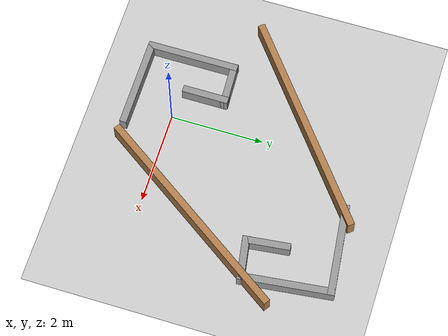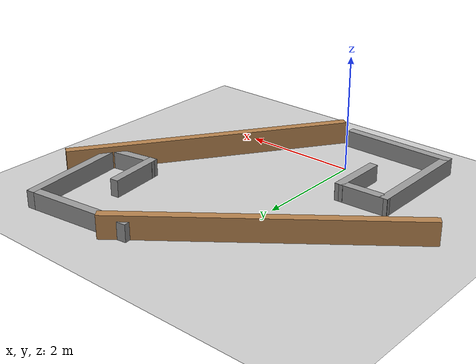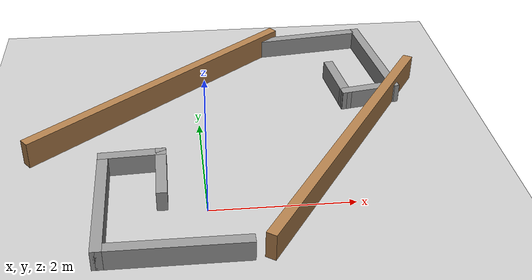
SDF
<sdf version="1.6">
 <world name="default">
  <light name="sun" type="directional">
   <pose>0 0 10 0 -0 0</pose>
   <diffuse>0.8 0.8 0.8 1</diffuse>
   <specular>0.2 0.2 0.2 1</specular>
   <attenuation>
    <range>1000</range>
    <constant>0.9</constant>
    <linear>0.01</linear>
    <quadratic>0.001</quadratic>
   </attenuation>
   <direction>-0.5 0.1 -0.9</direction>
  </light>
  <model name="ground_plane">
   <static>1</static>
   <link name="link">
    <collision name="collision">
     <geometry><plane><normal>0 0 1</normal><size>100 100</size></plane></geometry>
     <surface>
      <contact><collide_bitmask>65535</collide_bitmask></contact>
      <friction><ode><mu>100</mu><mu2>50</mu2></ode></friction>
     </surface>
    </collision>
    <visual name="visual">
     <cast_shadows>0</cast_shadows>
     <geometry><plane><normal>0 0 1</normal><size>100 100</size></plane></geometry>
     <material>
      <script><uri>file://media/materials/scripts/gazebo.material</uri><name>Gazebo/Grey</name></script>
     </material>
    </visual>
   </link>
  </model>
  <gravity>0 0 -9.8</gravity>
  <magnetic_field>6e-06 2.3e-05 -4.2e-05</magnetic_field>
  <atmosphere type="adiabatic"/>
  <physics name="default_physics" default="0" type="ode">
   <max_step_size>0.001</max_step_size>
   <real_time_factor>1</real_time_factor>
   <real_time_update_rate>1000</real_time_update_rate>
  </physics>
  <scene><ambient>0.4 0.4 0.4 1</ambient><background>0.7 0.7 0.7 1</background><shadows>1</shadows></scene>
  <audio><device>default</device></audio>
  <spherical_coordinates>
   <surface_model>EARTH_WGS84</surface_model>
   <latitude_deg>0</latitude_deg>
   <longitude_deg>0</longitude_deg>
   <elevation>0</elevation>
   <heading_deg>0</heading_deg>
  </spherical_coordinates>
  <model name="Esquina">
   <pose>-0.467561 0.042822 0 0 -0 0</pose>
   <link name="Wall_0">
    <collision name="Wall_0_Collision">
     <geometry><box><size>2 0.15 0.3</size></box></geometry>
     <pose>0 0 0.15 0 -0 0</pose>
    </collision>
    <visual name="Wall_0_Visual">
     <pose>0 0 0.15 0 -0 0</pose>
     <geometry><box><size>2 0.15 0.3</size></box></geometry>
     <material>
      <script><uri>file://media/materials/scripts/gazebo.material</uri><name>Gazebo/Grey</name></script>
      <ambient>1 1 1 1</ambient>
     </material>
     <meta><layer>0</layer></meta>
    </visual>
    <pose>-0.923174 -0.021826 0 0 -0 -1.5708</pose>
   </link>
   <link name="Wall_1">
    <collision name="Wall_1_Collision">
     <geometry><box><size>2 0.15 0.3</size></box></geometry>
     <pose>0 0 0.15 0 -0 0</pose>
    </collision>
    <visual name="Wall_1_Visual">
     <pose>0 0 0.15 0 -0 0</pose>
     <geometry><box><size>2 0.15 0.3</size></box></geometry>
     <material>
      <script><uri>file://media/materials/scripts/gazebo.material</uri><name>Gazebo/Grey</name></script>
      <ambient>1 1 1 1</ambient>
     </material>
     <meta><layer>0</layer></meta>
    </visual>
    <pose>0.001826 -0.946826 0 0 -0 0</pose>
   </link>
   <link name="Wall_3">
    <collision name="Wall_3_Collision">
     <geometry><box><size>1 0.15 0.3</size></box></geometry>
     <pose>0 0 0.15 0 -0 0</pose>
    </collision>
    <visual name="Wall_3_Visual">
     <pose>0 0 0.15 0 -0 0</pose>
     <geometry><box><size>1 0.15 0.3</size></box></geometry>
     <material>
      <script><uri>file://media/materials/scripts/gazebo.material</uri><name>Gazebo/Grey</name></script>
      <ambient>1 1 1 1</ambient>
     </material>
     <meta><layer>0</layer></meta>
    </visual>
    <pose>-0.123174 0.518174 0 0 -0 -1.5708</pose>
   </link>
   <link name="Wall_6">
    <collision name="Wall_6_Collision">
     <geometry><box><size>0.950999 0.15 0.3</size></box></geometry>
     <pose>0 0 0.15 0 -0 0</pose>
    </collision>
    <visual name="Wall_6_Visual">
     <pose>0 0 0.15 0 -0 0</pose>
     <geometry><box><size>0.950999 0.15 0.3</size></box></geometry>
     <material>
      <script><uri>file://media/materials/scripts/gazebo.material</uri><name>Gazebo/Grey</name></script>
      <ambient>1 1 1 1</ambient>
     </material>
     <meta><layer>0</layer></meta>
    </visual>
    <pose>-0.523174 0.923174 0 0 -0 -3.09163</pose>
   </link>
   <static>1</static>
  </model>
  <model name="wall">
   <pose>2.12213 1.09682 0 0 -0 0.972243</pose>
   <link name="Wall_0">
    <collision name="Wall_0_Collision">
     <geometry><box><size>5 0.15 0.4</size></box></geometry>
     <pose>0 0 0.2 0 -0 0</pose>
    </collision>
    <visual name="Wall_0_Visual">
     <pose>0 0 0.2 0 -0 0</pose>
     <geometry><box><size>5 0.15 0.4</size></box></geometry>
     <material>
      <script><uri>file://media/materials/scripts/gazebo.material</uri><name>Gazebo/Wood</name></script>
      <ambient>1 1 1 1</ambient>
     </material>
     <meta><layer>0</layer></meta>
    </visual>
   </link>
   <static>1</static>
  </model>
  <model name="Esquina_0">
   <pose>2.09409 3.27346 0 0 0 -3.02533</pose>
   <link name="Wall_0">
    <collision name="Wall_0_Collision">
     <geometry><box><size>2 0.15 0.3</size></box></geometry>
     <pose>0 0 0.15 0 -0 0</pose>
    </collision>
    <visual name="Wall_0_Visual">
     <pose>0 0 0.15 0 -0 0</pose>
     <geometry><box><size>2 0.15 0.3</size></box></geometry>
     <material>
      <script><uri>file://media/materials/scripts/gazebo.material</uri><name>Gazebo/Grey</name></script>
      <ambient>1 1 1 1</ambient>
     </material>
     <meta><layer>0</layer></meta>
    </visual>
    <pose>-0.923174 -0.021826 0 0 -0 -1.5708</pose>
   </link>
   <link name="Wall_1">
    <collision name="Wall_1_Collision">
     <geometry><box><size>2 0.15 0.3</size></box></geometry>
     <pose>0 0 0.15 0 -0 0</pose>
    </collision>
    <visual name="Wall_1_Visual">
     <pose>0 0 0.15 0 -0 0</pose>
     <geometry><box><size>2 0.15 0.3</size></box></geometry>
     <material>
      <script><uri>file://media/materials/scripts/gazebo.material</uri><name>Gazebo/Grey</name></script>
      <ambient>1 1 1 1</ambient>
     </material>
     <meta><layer>0</layer></meta>
    </visual>
    <pose>0.001826 -0.946826 0 0 -0 0</pose>
   </link>
   <link name="Wall_3">
    <collision name="Wall_3_Collision">
     <geometry><box><size>1 0.15 0.3</size></box></geometry>
     <pose>0 0 0.15 0 -0 0</pose>
    </collision>
    <visual name="Wall_3_Visual">
     <pose>0 0 0.15 0 -0 0</pose>
     <geometry><box><size>1 0.15 0.3</size></box></geometry>
     <material>
      <script><uri>file://media/materials/scripts/gazebo.material</uri><name>Gazebo/Grey</name></script>
      <ambient>1 1 1 1</ambient>
     </material>
     <meta><layer>0</layer></meta>
    </visual>
    <pose>-0.123174 0.518174 0 0 -0 -1.5708</pose>
   </link>
   <link name="Wall_6">
    <collision name="Wall_6_Collision">
     <geometry><box><size>0.950999 0.15 0.3</size></box></geometry>
     <pose>0 0 0.15 0 -0 0</pose>
    </collision>
    <visual name="Wall_6_Visual">
     <pose>0 0 0.15 0 -0 0</pose>
     <geometry><box><size>0.950999 0.15 0.3</size></box></geometry>
     <material>
      <script><uri>file://media/materials/scripts/gazebo.material</uri><name>Gazebo/Grey</name></script>
      <ambient>1 1 1 1</ambient>
     </material>
     <meta><layer>0</layer></meta>
    </visual>
    <pose>-0.523174 0.923174 0 0 -0 -3.09163</pose>
   </link>
   <static>1</static>
  </model>
  <model name="wall_0">
   <pose>-0.534571 2.77085 0 0 0 -2.47327</pose>
   <link name="Wall_0">
    <collision name="Wall_0_Collision">
     <geometry><box><size>5 0.15 0.4</size></box></geometry>
     <pose>0 0 0.2 0 -0 0</pose>
    </collision>
    <visual name="Wall_0_Visual">
     <pose>0 0 0.2 0 -0 0</pose>
     <geometry><box><size>5 0.15 0.4</size></box></geometry>
     <material>
      <script><uri>file://media/materials/scripts/gazebo.material</uri><name>Gazebo/Wood</name></script>
      <ambient>1 1 1 1</ambient>
     </material>
     <meta><layer>0</layer></meta>
    </visual>
   </link>
   <static>1</static>
  </model>
 </world>
</sdf>
